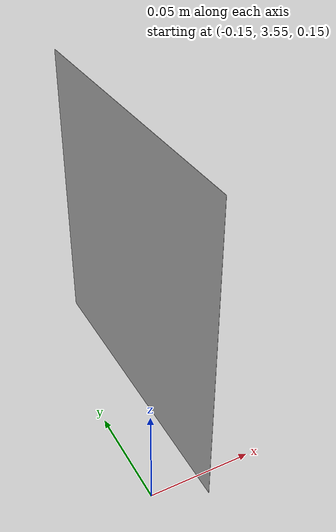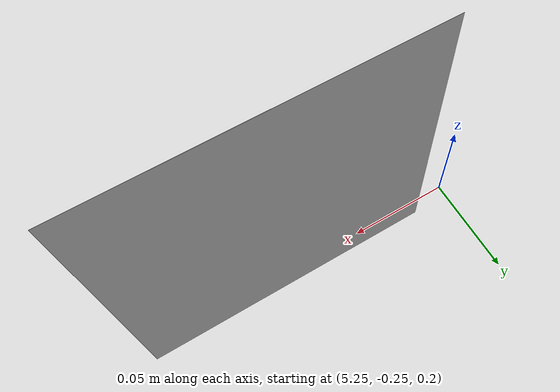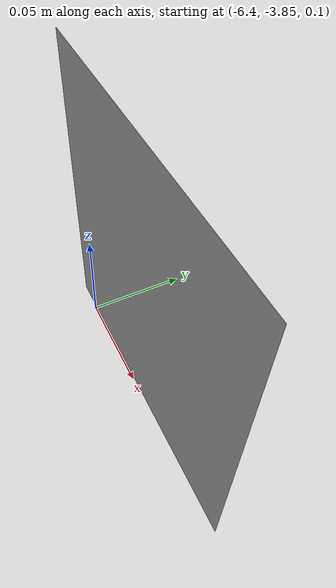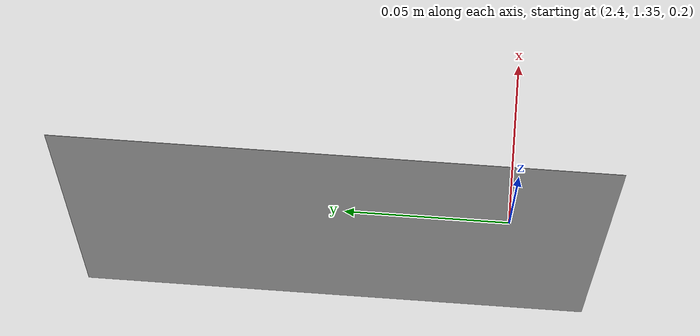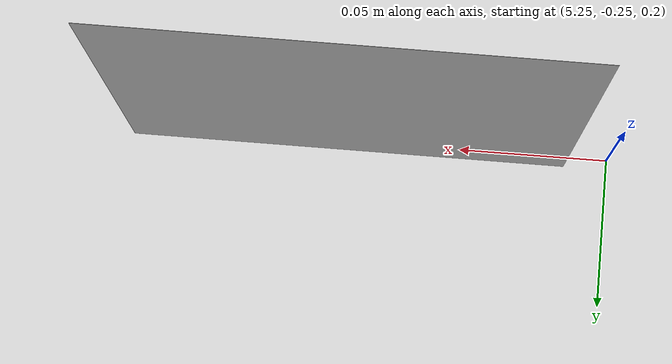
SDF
<sdf version="1.4">
 <world name="default">
  <include><uri>model://sun</uri></include>
  <include><uri>model://ground_plane</uri></include>
  <physics type="ode">
   <real_time_update_rate>1000.0</real_time_update_rate>
   <max_step_size>0.001</max_step_size>
   <real_time_factor>1</real_time_factor>
   <ode>
    <solver>
     <type>quick</type>
     <iters>150</iters>
     <precon_iters>0</precon_iters>
     <sor>1.4</sor>
     <use_dynamic_moi_rescaling>1</use_dynamic_moi_rescaling>
    </solver>
    <constraints>
     <cfm>0.00001</cfm>
     <erp>0.2</erp>
     <contact_max_correcting_vel>2000.0</contact_max_correcting_vel>
     <contact_surface_layer>0.01</contact_surface_layer>
    </constraints>
   </ode>
  </physics>
  <model name="aruco_marker_0">
   <static>1</static>
   <link name="link">
    <visual name="visual">
     <geometry><box><size>0.0001 0.15 0.15</size></box></geometry>
     <material>
      <script>
       <uri>model://aruco_marker_0/materials/scripts</uri>
       <uri>model://aruco_marker_0/materials/textures</uri>
       <name>aruco_marker_0</name>
      </script>
     </material>
    </visual>
   </link>
   <pose>5.338015 -0.25 0.26 0 0 -1.57079632679</pose>
  </model>
  <model name="aruco_marker_1">
   <static>1</static>
   <link name="link">
    <visual name="visual">
     <geometry><box><size>0.0001 0.15 0.15</size></box></geometry>
     <material>
      <script>
       <uri>model://aruco_marker_1/materials/scripts</uri>
       <uri>model://aruco_marker_1/materials/textures</uri>
       <name>aruco_marker_1</name>
      </script>
     </material>
    </visual>
   </link>
   <pose>2.376755 1.40131 0.264145 0 0 0</pose>
  </model>
  <model name="aruco_marker_2">
   <static>1</static>
   <link name="link">
    <visual name="visual">
     <geometry><box><size>0.0001 0.15 0.15</size></box></geometry>
     <material>
      <script>
       <uri>model://aruco_marker_2/materials/scripts</uri>
       <uri>model://aruco_marker_2/materials/textures</uri>
       <name>aruco_marker_2</name>
      </script>
     </material>
    </visual>
   </link>
   <pose>-0.129352 3.61036 0.231524 0 0 0</pose>
  </model>
  <model name="aruco_marker_3">
   <static>1</static>
   <link name="link">
    <visual name="visual">
     <geometry><box><size>0.0001 0.15 0.15</size></box></geometry>
     <material>
      <script>
       <uri>model://aruco_marker_3/materials/scripts</uri>
       <uri>model://aruco_marker_3/materials/textures</uri>
       <name>aruco_marker_3</name>
      </script>
     </material>
    </visual>
   </link>
   <pose>-6.343885 -3.848506 0.171899 0 0 -1.57079632679</pose>
  </model>
  <scene><ambient>0.4 0.4 0.4 1</ambient><background>0.7 0.7 0.7 1</background><shadows>true</shadows></scene>
 </world>
</sdf>
